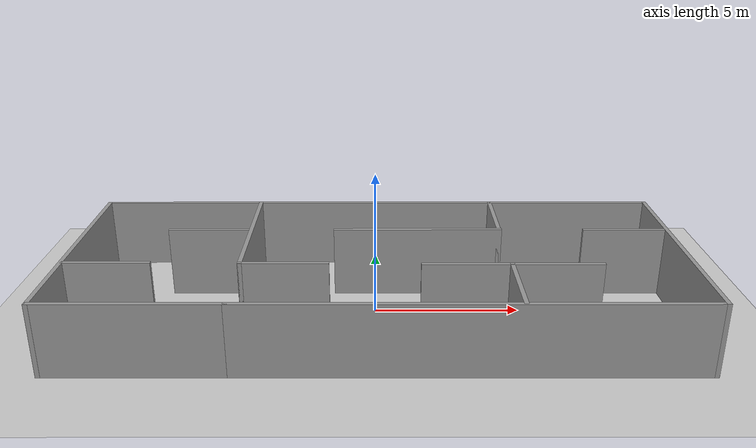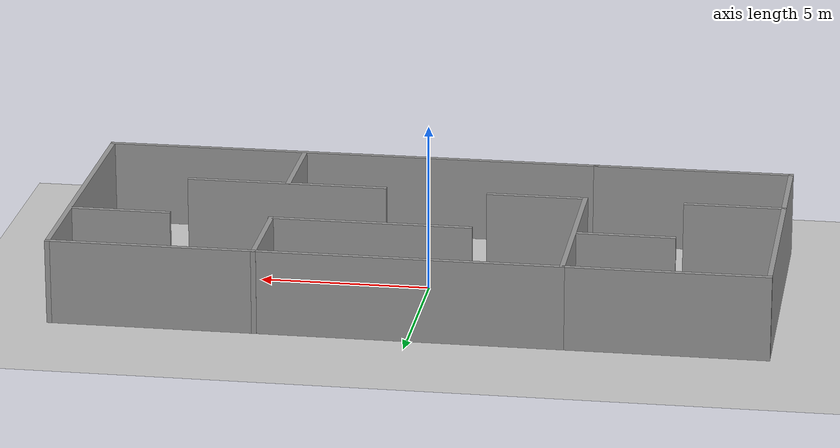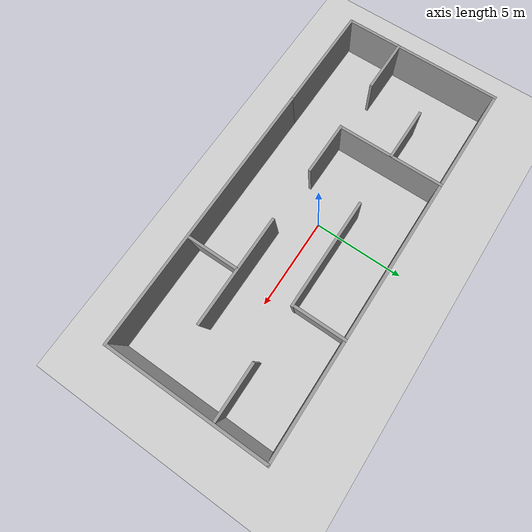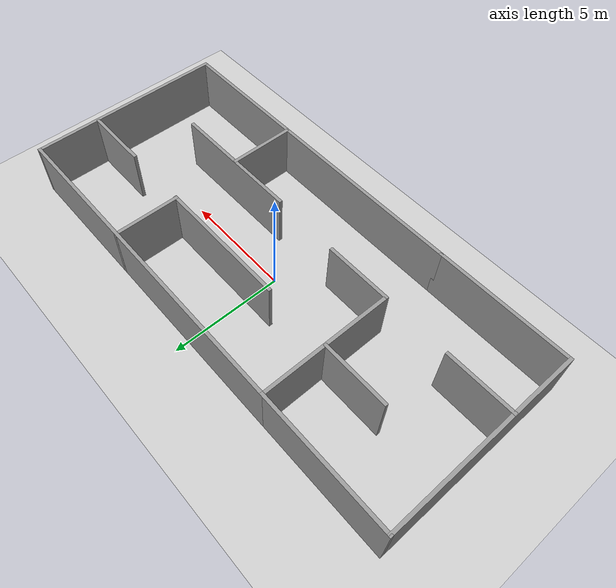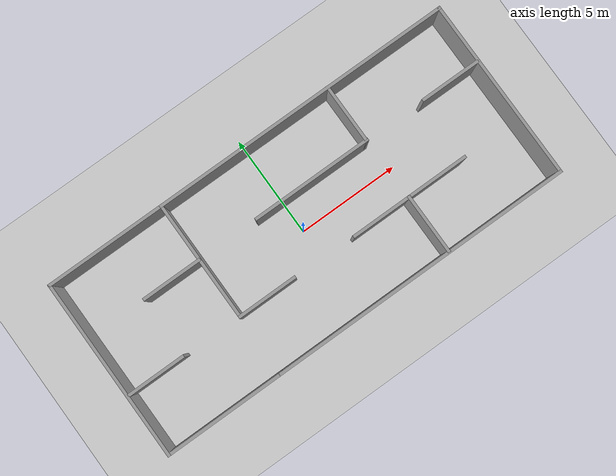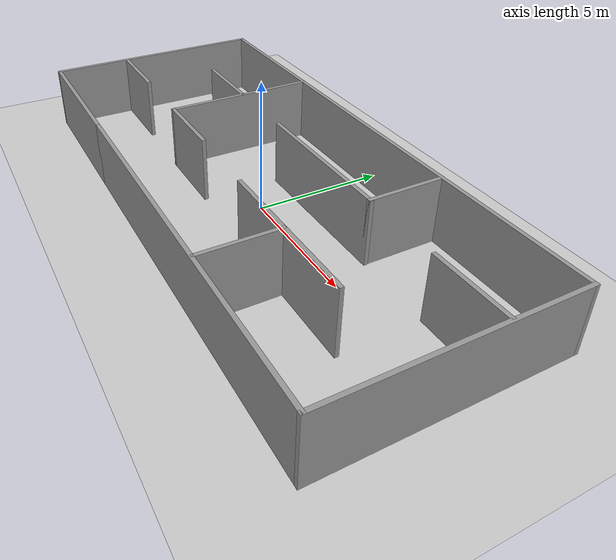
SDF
<sdf version="1.7">
 <world name="default">
  <light name="sun" type="directional">
   <pose>0 0 10 0 -0 0</pose>
   <diffuse>0.8 0.8 0.8 1</diffuse>
   <specular>0.2 0.2 0.2 1</specular>
   <attenuation>
    <range>1000</range>
    <constant>0.9</constant>
    <linear>0.01</linear>
    <quadratic>0.001</quadratic>
   </attenuation>
   <direction>-0.5 0.1 -0.9</direction>
   <spot><inner_angle>0</inner_angle><outer_angle>0</outer_angle><falloff>0</falloff></spot>
  </light>
  <model name="ground_plane">
   <static>1</static>
   <link name="link">
    <collision name="collision">
     <geometry><plane><normal>0 0 1</normal><size>100 100</size></plane></geometry>
     <surface><friction><ode><mu>100</mu><mu2>50</mu2></ode></friction></surface>
    </collision>
    <visual name="visual">
     <cast_shadows>0</cast_shadows>
     <geometry><plane><normal>0 0 1</normal><size>100 100</size></plane></geometry>
     <material>
      <script><uri>file://media/materials/scripts/gazebo.material</uri><name>Gazebo/Grey</name></script>
     </material>
    </visual>
   </link>
  </model>
  <gravity>0 0 -9.8</gravity>
  <magnetic_field>6e-06 2.3e-05 -4.2e-05</magnetic_field>
  <atmosphere type="adiabatic"/>
  <physics type="ode">
   <max_step_size>0.001</max_step_size>
   <real_time_factor>1</real_time_factor>
   <real_time_update_rate>1000</real_time_update_rate>
  </physics>
  <scene><ambient>0.4 0.4 0.4 1</ambient><background>0.7 0.7 0.7 1</background><shadows>1</shadows></scene>
  <spherical_coordinates>
   <surface_model>EARTH_WGS84</surface_model>
   <latitude_deg>0</latitude_deg>
   <longitude_deg>0</longitude_deg>
   <elevation>0</elevation>
   <heading_deg>0</heading_deg>
  </spherical_coordinates>
  <model name="world_demo">
   <pose>0.067437 -0.102412 0 0 -0 0</pose>
   <link name="Wall_10">
    <collision name="Wall_10_Collision">
     <geometry><box><size>6 0.15 2.5</size></box></geometry>
     <pose>0 0 1.25 0 -0 0</pose>
    </collision>
    <visual name="Wall_10_Visual">
     <pose>0 0 1.25 0 -0 0</pose>
     <geometry><box><size>6 0.15 2.5</size></box></geometry>
     <material>
      <script><uri>file://media/materials/scripts/gazebo.material</uri><name>Gazebo/Grey</name></script>
      <ambient>1 1 1 1</ambient>
     </material>
     <meta><layer>0</layer></meta>
    </visual>
    <pose>1.44696 1.57637 0 0 -0 0</pose>
   </link>
   <link name="Wall_11">
    <collision name="Wall_11_Collision">
     <geometry><box><size>3 0.15 2.5</size></box></geometry>
     <pose>0 0 1.25 0 -0 0</pose>
    </collision>
    <visual name="Wall_11_Visual">
     <pose>0 0 1.25 0 -0 0</pose>
     <geometry><box><size>3 0.15 2.5</size></box></geometry>
     <material>
      <script><uri>file://media/materials/scripts/gazebo.material</uri><name>Gazebo/Grey</name></script>
      <ambient>1 1 1 1</ambient>
     </material>
     <meta><layer>0</layer></meta>
    </visual>
    <pose>4.34883 3.00137 0 0 -0 1.5708</pose>
   </link>
   <link name="Wall_13">
    <collision name="Wall_13_Collision">
     <geometry><box><size>3 0.15 2.5</size></box></geometry>
     <pose>0 0 1.25 0 -0 0</pose>
    </collision>
    <visual name="Wall_13_Visual">
     <pose>0 0 1.25 0 -0 0</pose>
     <geometry><box><size>3 0.15 2.5</size></box></geometry>
     <material>
      <script><uri>file://media/materials/scripts/gazebo.material</uri><name>Gazebo/Grey</name></script>
      <ambient>1 1 1 1</ambient>
     </material>
     <meta><layer>0</layer></meta>
    </visual>
    <pose>8.84731 1.55324 0 0 -0 3.14159</pose>
   </link>
   <link name="Wall_15">
    <collision name="Wall_15_Collision">
     <geometry><box><size>15 0.15 2.5</size></box></geometry>
     <pose>0 0 1.25 0 -0 0</pose>
    </collision>
    <visual name="Wall_15_Visual">
     <pose>0 0 1.25 0 -0 0</pose>
     <geometry><box><size>15 0.15 2.5</size></box></geometry>
     <material>
      <script><uri>file://media/materials/scripts/gazebo.material</uri><name>Gazebo/Grey</name></script>
      <ambient>1 1 1 1</ambient>
     </material>
     <meta><layer>0</layer></meta>
    </visual>
    <pose>2.925 4.42363 0 0 -0 3.14159</pose>
   </link>
   <link name="Wall_16">
    <collision name="Wall_16_Collision">
     <geometry><box><size>6 0.15 2.5</size></box></geometry>
     <pose>0 0 1.25 0 -0 0</pose>
    </collision>
    <visual name="Wall_16_Visual">
     <pose>0 0 1.25 0 -0 0</pose>
     <geometry><box><size>6 0.15 2.5</size></box></geometry>
     <material>
      <script><uri>file://media/materials/scripts/gazebo.material</uri><name>Gazebo/Grey</name></script>
      <ambient>1 1 1 1</ambient>
     </material>
     <meta><layer>0</layer></meta>
    </visual>
    <pose>-4.5 1.49863 0 0 -0 -1.5708</pose>
   </link>
   <link name="Wall_17">
    <collision name="Wall_17_Collision">
     <geometry><box><size>3 0.15 2.5</size></box></geometry>
     <pose>0 0 1.25 0 -0 0</pose>
    </collision>
    <visual name="Wall_17_Visual">
     <pose>0 0 1.25 0 -0 0</pose>
     <geometry><box><size>3 0.15 2.5</size></box></geometry>
     <material>
      <script><uri>file://media/materials/scripts/gazebo.material</uri><name>Gazebo/Grey</name></script>
      <ambient>1 1 1 1</ambient>
     </material>
     <meta><layer>0</layer></meta>
    </visual>
    <pose>-3.075 -1.42637 0 0 -0 0</pose>
   </link>
   <link name="Wall_19">
    <collision name="Wall_19_Collision">
     <geometry><box><size>6 0.15 2.5</size></box></geometry>
     <pose>0 0 1.25 0 -0 0</pose>
    </collision>
    <visual name="Wall_19_Visual">
     <pose>0 0 1.25 0 -0 0</pose>
     <geometry><box><size>6 0.15 2.5</size></box></geometry>
     <material>
      <script><uri>file://media/materials/scripts/gazebo.material</uri><name>Gazebo/Grey</name></script>
      <ambient>1 1 1 1</ambient>
     </material>
     <meta><layer>0</layer></meta>
    </visual>
    <pose>-7.425 4.42363 0 0 -0 3.14159</pose>
   </link>
   <link name="Wall_2">
    <collision name="Wall_2_Collision">
     <geometry><box><size>15 0.15 2.5</size></box></geometry>
     <pose>0 0 1.25 0 -0 0</pose>
    </collision>
    <visual name="Wall_2_Visual">
     <pose>0 0 1.25 0 -0 0</pose>
     <geometry><box><size>15 0.15 2.5</size></box></geometry>
     <material>
      <script><uri>file://media/materials/scripts/gazebo.material</uri><name>Gazebo/Grey</name></script>
      <ambient>1 1 1 1</ambient>
     </material>
     <meta><layer>0</layer></meta>
    </visual>
    <pose>2.925 -4.42637 0 0 -0 0</pose>
   </link>
   <link name="Wall_20">
    <collision name="Wall_20_Collision">
     <geometry><box><size>9 0.15 2.5</size></box></geometry>
     <pose>0 0 1.25 0 -0 0</pose>
    </collision>
    <visual name="Wall_20_Visual">
     <pose>0 0 1.25 0 -0 0</pose>
     <geometry><box><size>9 0.15 2.5</size></box></geometry>
     <material>
      <script><uri>file://media/materials/scripts/gazebo.material</uri><name>Gazebo/Grey</name></script>
      <ambient>1 1 1 1</ambient>
     </material>
     <meta><layer>0</layer></meta>
    </visual>
    <pose>-10.35 -0.001372 0 0 -0 -1.5708</pose>
   </link>
   <link name="Wall_21">
    <collision name="Wall_21_Collision">
     <geometry><box><size>6 0.15 2.5</size></box></geometry>
     <pose>0 0 1.25 0 -0 0</pose>
    </collision>
    <visual name="Wall_21_Visual">
     <pose>0 0 1.25 0 -0 0</pose>
     <geometry><box><size>6 0.15 2.5</size></box></geometry>
     <material>
      <script><uri>file://media/materials/scripts/gazebo.material</uri><name>Gazebo/Grey</name></script>
      <ambient>1 1 1 1</ambient>
     </material>
     <meta><layer>0</layer></meta>
    </visual>
    <pose>-7.425 -4.42637 0 0 -0 0</pose>
   </link>
   <link name="Wall_23">
    <collision name="Wall_23_Collision">
     <geometry><box><size>3 0.15 2.5</size></box></geometry>
     <pose>0 0 1.25 0 -0 0</pose>
    </collision>
    <visual name="Wall_23_Visual">
     <pose>0 0 1.25 0 -0 0</pose>
     <geometry><box><size>3 0.15 2.5</size></box></geometry>
     <material>
      <script><uri>file://media/materials/scripts/gazebo.material</uri><name>Gazebo/Grey</name></script>
      <ambient>1 1 1 1</ambient>
     </material>
     <meta><layer>0</layer></meta>
    </visual>
    <pose>-5.95628 1.57637 0 0 -0 3.14159</pose>
   </link>
   <link name="Wall_25">
    <collision name="Wall_25_Collision">
     <geometry><box><size>3 0.15 2.5</size></box></geometry>
     <pose>0 0 1.25 0 -0 0</pose>
    </collision>
    <visual name="Wall_25_Visual">
     <pose>0 0 1.25 0 -0 0</pose>
     <geometry><box><size>3 0.15 2.5</size></box></geometry>
     <material>
      <script><uri>file://media/materials/scripts/gazebo.material</uri><name>Gazebo/Grey</name></script>
      <ambient>1 1 1 1</ambient>
     </material>
     <meta><layer>0</layer></meta>
    </visual>
    <pose>-8.91206 -1.38435 0 0 -0 0</pose>
   </link>
   <link name="Wall_3">
    <collision name="Wall_3_Collision">
     <geometry><box><size>9 0.15 2.5</size></box></geometry>
     <pose>0 0 1.25 0 -0 0</pose>
    </collision>
    <visual name="Wall_3_Visual">
     <pose>0 0 1.25 0 -0 0</pose>
     <geometry><box><size>9 0.15 2.5</size></box></geometry>
     <material>
      <script><uri>file://media/materials/scripts/gazebo.material</uri><name>Gazebo/Grey</name></script>
      <ambient>1 1 1 1</ambient>
     </material>
     <meta><layer>0</layer></meta>
    </visual>
    <pose>10.35 -0.001372 0 0 -0 1.5708</pose>
   </link>
   <link name="Wall_5">
    <collision name="Wall_5_Collision">
     <geometry><box><size>3 0.15 2.5</size></box></geometry>
     <pose>0 0 1.25 0 -0 0</pose>
    </collision>
    <visual name="Wall_5_Visual">
     <pose>0 0 1.25 0 -0 0</pose>
     <geometry><box><size>3 0.15 2.5</size></box></geometry>
     <material>
      <script><uri>file://media/materials/scripts/gazebo.material</uri><name>Gazebo/Grey</name></script>
      <ambient>1 1 1 1</ambient>
     </material>
     <meta><layer>0</layer></meta>
    </visual>
    <pose>4.39714 -2.94319 0 0 -0 1.5708</pose>
   </link>
   <link name="Wall_8">
    <collision name="Wall_8_Collision">
     <geometry><box><size>6 0.15 2.5</size></box></geometry>
     <pose>0 0 1.25 0 -0 0</pose>
    </collision>
    <visual name="Wall_8_Visual">
     <pose>0 0 1.25 0 -0 0</pose>
     <geometry><box><size>6 0.15 2.5</size></box></geometry>
     <material>
      <script><uri>file://media/materials/scripts/gazebo.material</uri><name>Gazebo/Grey</name></script>
      <ambient>1 1 1 1</ambient>
     </material>
     <meta><layer>0</layer></meta>
    </visual>
    <pose>4.43285 -1.5 0 0 -0 3.14159</pose>
   </link>
   <static>1</static>
  </model>
 </world>
</sdf>
